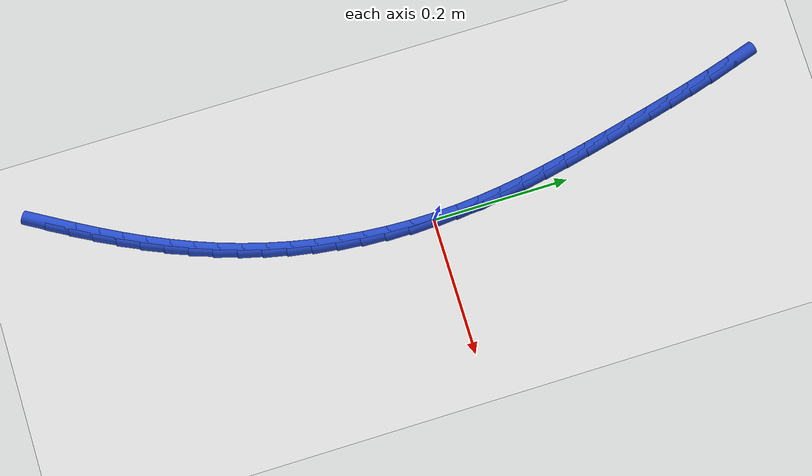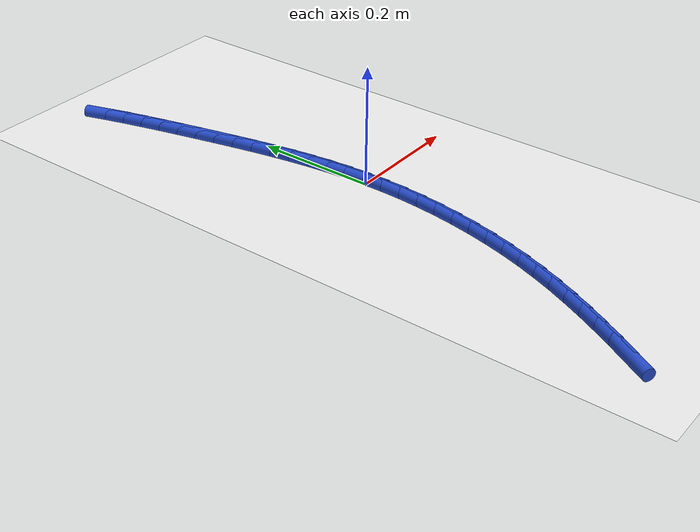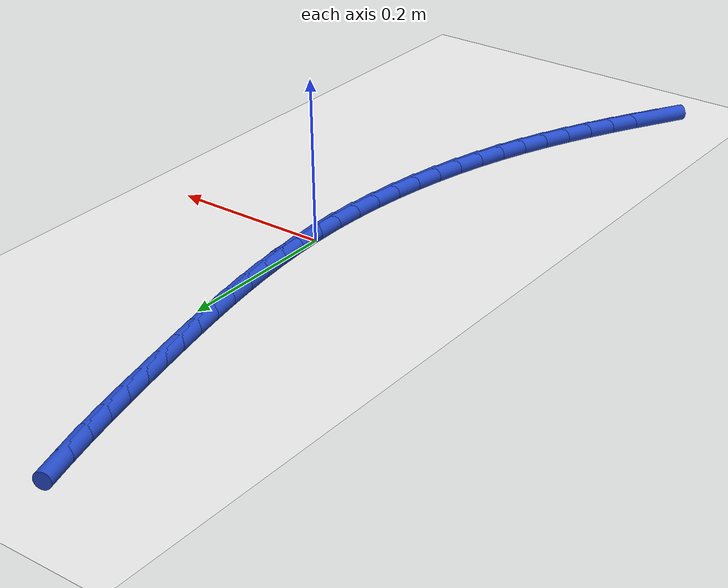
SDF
<sdf version="1.6">
 <world name="default">
  <model name="ground_plane">
   <static>1</static>
   <link name="link">
    <collision name="collision">
     <geometry><plane><normal>0 0 1</normal><size>100 100</size></plane></geometry>
     <surface><friction><ode><mu>100</mu><mu2>50</mu2></ode></friction></surface>
    </collision>
    <visual name="visual">
     <cast_shadows>0</cast_shadows>
     <geometry><plane><normal>0 0 1</normal><size>100 100</size></plane></geometry>
     <material>
      <script><uri>file://media/materials/scripts/gazebo.material</uri><name>Gazebo/WhiteGlow</name></script>
     </material>
    </visual>
   </link>
  </model>
  <model name="line">
   <link name="link_0">
    <pose>6.938893903907228e-18 -1.1796119636642288e-16 0.01 0 1.57 -1.5264489816676594</pose>
    <collision name="collision">
     <geometry><cylinder><radius>0.01</radius><length>0.08</length></cylinder></geometry>
    </collision>
    <visual name="visual">
     <material>
      <script><name>Gazebo/Blue</name><uri>file://media/materials/scripts/gazebo.material</uri></script>
     </material>
     <geometry><cylinder><radius>0.01</radius><length>0.08</length></cylinder></geometry>
    </visual>
   </link>
   <link name="link_1">
    <pose>-0.0015467610386075527 0.03485545533591956 0.01 0 1.57 -1.4882659478826439</pose>
    <collision name="collision">
     <geometry><cylinder><radius>0.01</radius><length>0.08</length></cylinder></geometry>
    </collision>
    <visual name="visual">
     <material>
      <script><name>Gazebo/Blue</name><uri>file://media/materials/scripts/gazebo.material</uri></script>
     </material>
     <geometry><cylinder><radius>0.01</radius><length>0.08</length></cylinder></geometry>
    </visual>
   </link>
   <link name="link_2">
    <pose>-0.0044185333484661775 0.06957296484486963 0.01 0 1.57 -1.4543281719729082</pose>
    <collision name="collision">
     <geometry><cylinder><radius>0.01</radius><length>0.08</length></cylinder></geometry>
    </collision>
    <visual name="visual">
     <material>
      <script><name>Gazebo/Blue</name><uri>file://media/materials/scripts/gazebo.material</uri></script>
     </material>
     <geometry><cylinder><radius>0.01</radius><length>0.08</length></cylinder></geometry>
    </visual>
   </link>
   <link name="link_3">
    <pose>-0.008464915684399684 0.1041581234297182 0.01 0 1.57 -1.424693767751485</pose>
    <collision name="collision">
     <geometry><cylinder><radius>0.01</radius><length>0.08</length></cylinder></geometry>
    </collision>
    <visual name="visual">
     <material>
      <script><name>Gazebo/Blue</name><uri>file://media/materials/scripts/gazebo.material</uri></script>
     </material>
     <geometry><cylinder><radius>0.01</radius><length>0.08</length></cylinder></geometry>
    </visual>
   </link>
   <link name="link_4">
    <pose>-0.013535506801231889 0.13861652599333338 0.01 0 1.57 -1.3993772028632878</pose>
    <collision name="collision">
     <geometry><cylinder><radius>0.01</radius><length>0.08</length></cylinder></geometry>
    </collision>
    <visual name="visual">
     <material>
      <script><name>Gazebo/Blue</name><uri>file://media/materials/scripts/gazebo.material</uri></script>
     </material>
     <geometry><cylinder><radius>0.01</radius><length>0.08</length></cylinder></geometry>
    </visual>
   </link>
   <link name="link_5">
    <pose>-0.019479905453786604 0.17295376743858337 0.01 0 1.57 -1.378365679883654</pose>
    <collision name="collision">
     <geometry><cylinder><radius>0.01</radius><length>0.08</length></cylinder></geometry>
    </collision>
    <visual name="visual">
     <material>
      <script><name>Gazebo/Blue</name><uri>file://media/materials/scripts/gazebo.material</uri></script>
     </material>
     <geometry><cylinder><radius>0.01</radius><length>0.08</length></cylinder></geometry>
    </visual>
   </link>
   <link name="link_6">
    <pose>-0.02614771039688766 0.20717544266833637 0.01 0 1.57 -1.361633290367969</pose>
    <collision name="collision">
     <geometry><cylinder><radius>0.01</radius><length>0.08</length></cylinder></geometry>
    </collision>
    <visual name="visual">
     <material>
      <script><name>Gazebo/Blue</name><uri>file://media/materials/scripts/gazebo.material</uri></script>
     </material>
     <geometry><cylinder><radius>0.01</radius><length>0.08</length></cylinder></geometry>
    </visual>
   </link>
   <link name="link_7">
    <pose>-0.033388520385358854 0.24128714658546044 0.01 0 1.57 -1.3491526212590932</pose>
    <collision name="collision">
     <geometry><cylinder><radius>0.01</radius><length>0.08</length></cylinder></geometry>
    </collision>
    <visual name="visual">
     <material>
      <script><name>Gazebo/Blue</name><uri>file://media/materials/scripts/gazebo.material</uri></script>
     </material>
     <geometry><cylinder><radius>0.01</radius><length>0.08</length></cylinder></geometry>
    </visual>
   </link>
   <link name="link_8">
    <pose>-0.041051934174024 0.2752944740928237 0.01 0 1.57 -1.3409038187022755</pose>
    <collision name="collision">
     <geometry><cylinder><radius>0.01</radius><length>0.08</length></cylinder></geometry>
    </collision>
    <visual name="visual">
     <material>
      <script><name>Gazebo/Blue</name><uri>file://media/materials/scripts/gazebo.material</uri></script>
     </material>
     <geometry><cylinder><radius>0.01</radius><length>0.08</length></cylinder></geometry>
    </visual>
   </link>
   <link name="link_9">
    <pose>-0.04898755052486072 0.30920302009256817 0.01 0 1.57 -1.3356244483135322</pose>
    <collision name="collision">
     <geometry><cylinder><radius>0.01</radius><length>0.08</length></cylinder></geometry>
    </collision>
    <visual name="visual">
     <material>
      <script><name>Gazebo/Blue</name><uri>file://media/materials/scripts/gazebo.material</uri></script>
     </material>
     <geometry><cylinder><radius>0.01</radius><length>0.08</length></cylinder></geometry>
    </visual>
   </link>
   <link name="link_10">
    <pose>-0.057088827889704534 0.3430139272416276 0.01 0 1.57 -1.3283681049365337</pose>
    <collision name="collision">
     <geometry><cylinder><radius>0.01</radius><length>0.08</length></cylinder></geometry>
    </collision>
    <visual name="visual">
     <material>
      <script><name>Gazebo/Blue</name><uri>file://media/materials/scripts/gazebo.material</uri></script>
     </material>
     <geometry><cylinder><radius>0.01</radius><length>0.08</length></cylinder></geometry>
    </visual>
   </link>
   <link name="link_11">
    <pose>-0.06542179582705984 0.3767108203146784 0.01 0 1.57 -1.3179092680957762</pose>
    <collision name="collision">
     <geometry><cylinder><radius>0.01</radius><length>0.08</length></cylinder></geometry>
    </collision>
    <visual name="visual">
     <material>
      <script><name>Gazebo/Blue</name><uri>file://media/materials/scripts/gazebo.material</uri></script>
     </material>
     <geometry><cylinder><radius>0.01</radius><length>0.08</length></cylinder></geometry>
    </visual>
   </link>
   <link name="link_12">
    <pose>-0.07409492143907431 0.41027301620481044 0.01 0 1.57 -1.3042433775185882</pose>
    <collision name="collision">
     <geometry><cylinder><radius>0.01</radius><length>0.08</length></cylinder></geometry>
    </collision>
    <visual name="visual">
     <material>
      <script><name>Gazebo/Blue</name><uri>file://media/materials/scripts/gazebo.material</uri></script>
     </material>
     <geometry><cylinder><radius>0.01</radius><length>0.08</length></cylinder></geometry>
    </visual>
   </link>
   <link name="link_13">
    <pose>-0.08321667182789558 0.44367983180511394 0.01 0 1.57 -1.287375561786151</pose>
    <collision name="collision">
     <geometry><cylinder><radius>0.01</radius><length>0.08</length></cylinder></geometry>
    </collision>
    <visual name="visual">
     <material>
      <script><name>Gazebo/Blue</name><uri>file://media/materials/scripts/gazebo.material</uri></script>
     </material>
     <geometry><cylinder><radius>0.01</radius><length>0.08</length></cylinder></geometry>
    </visual>
   </link>
   <link name="link_14">
    <pose>-0.09289551409567123 0.4769105840086785 0.01 0 1.57 -1.2673248457521828</pose>
    <collision name="collision">
     <geometry><cylinder><radius>0.01</radius><length>0.08</length></cylinder></geometry>
    </collision>
    <visual name="visual">
     <material>
      <script><name>Gazebo/Blue</name><uri>file://media/materials/scripts/gazebo.material</uri></script>
     </material>
     <geometry><cylinder><radius>0.01</radius><length>0.08</length></cylinder></geometry>
    </visual>
   </link>
   <link name="link_184">
    <pose>-0.1540568127403309 -0.5268646328590214 0.01 0 1.57 1.0462151289923936</pose>
    <collision name="collision">
     <geometry><cylinder><radius>0.01</radius><length>0.08</length></cylinder></geometry>
    </collision>
    <visual name="visual">
     <material>
      <script><name>Gazebo/Blue</name><uri>file://media/materials/scripts/gazebo.material</uri></script>
     </material>
     <geometry><cylinder><radius>0.01</radius><length>0.08</length></cylinder></geometry>
    </visual>
   </link>
   <link name="link_185">
    <pose>-0.1364260822127284 -0.4963964774249297 0.01 0 1.57 1.064957142361367</pose>
    <collision name="collision">
     <geometry><cylinder><radius>0.01</radius><length>0.08</length></cylinder></geometry>
    </collision>
    <visual name="visual">
     <material>
      <script><name>Gazebo/Blue</name><uri>file://media/materials/scripts/gazebo.material</uri></script>
     </material>
     <geometry><cylinder><radius>0.01</radius><length>0.08</length></cylinder></geometry>
    </visual>
   </link>
   <link name="link_186">
    <pose>-0.11953117331551723 -0.4658952257632016 0.01 0 1.57 1.087607587859521</pose>
    <collision name="collision">
     <geometry><cylinder><radius>0.01</radius><length>0.08</length></cylinder></geometry>
    </collision>
    <visual name="visual">
     <material>
      <script><name>Gazebo/Blue</name><uri>file://media/materials/scripts/gazebo.material</uri></script>
     </material>
     <geometry><cylinder><radius>0.01</radius><length>0.08</length></cylinder></geometry>
    </visual>
   </link>
   <link name="link_187">
    <pose>-0.1034552844453795 -0.435255260574384 0.01 0 1.57 1.1141272805325437</pose>
    <collision name="collision">
     <geometry><cylinder><radius>0.01</radius><length>0.08</length></cylinder></geometry>
    </collision>
    <visual name="visual">
     <material>
      <script><name>Gazebo/Blue</name><uri>file://media/materials/scripts/gazebo.material</uri></script>
     </material>
     <geometry><cylinder><radius>0.01</radius><length>0.08</length></cylinder></geometry>
    </visual>
   </link>
   <link name="link_188">
    <pose>-0.08828161399899742 -0.4043709645590246 0.01 0 1.57 1.1444111170685975</pose>
    <collision name="collision">
     <geometry><cylinder><radius>0.01</radius><length>0.08</length></cylinder></geometry>
    </collision>
    <visual name="visual">
     <material>
      <script><name>Gazebo/Blue</name><uri>file://media/materials/scripts/gazebo.material</uri></script>
     </material>
     <geometry><cylinder><radius>0.01</radius><length>0.08</length></cylinder></geometry>
    </visual>
   </link>
   <link name="link_189">
    <pose>-0.07409336037305304 -0.37313672041767015 0.01 0 1.57 1.1782780035562979</pose>
    <collision name="collision">
     <geometry><cylinder><radius>0.01</radius><length>0.08</length></cylinder></geometry>
    </collision>
    <visual name="visual">
     <material>
      <script><name>Gazebo/Blue</name><uri>file://media/materials/scripts/gazebo.material</uri></script>
     </material>
     <geometry><cylinder><radius>0.01</radius><length>0.08</length></cylinder></geometry>
    </visual>
   </link>
   <link name="link_190">
    <pose>-0.060973721964228476 -0.34144691085086804 0.01 0 1.57 1.2154633404355106</pose>
    <collision name="collision">
     <geometry><cylinder><radius>0.01</radius><length>0.08</length></cylinder></geometry>
    </collision>
    <visual name="visual">
     <material>
      <script><name>Gazebo/Blue</name><uri>file://media/materials/scripts/gazebo.material</uri></script>
     </material>
     <geometry><cylinder><radius>0.01</radius><length>0.08</length></cylinder></geometry>
    </visual>
   </link>
   <link name="link_191">
    <pose>-0.049005897169205906 -0.3091959185591655 0.01 0 1.57 1.2550737342510223</pose>
    <collision name="collision">
     <geometry><cylinder><radius>0.01</radius><length>0.08</length></cylinder></geometry>
    </collision>
    <visual name="visual">
     <material>
      <script><name>Gazebo/Blue</name><uri>file://media/materials/scripts/gazebo.material</uri></script>
     </material>
     <geometry><cylinder><radius>0.01</radius><length>0.08</length></cylinder></geometry>
    </visual>
   </link>
   <link name="link_192">
    <pose>-0.03826381850314762 -0.27631022053347604 0.01 0 1.57 1.2947331056233067</pose>
    <collision name="collision">
     <geometry><cylinder><radius>0.01</radius><length>0.08</length></cylinder></geometry>
    </collision>
    <visual name="visual">
     <material>
      <script><name>Gazebo/Blue</name><uri>file://media/materials/scripts/gazebo.material</uri></script>
     </material>
     <geometry><cylinder><radius>0.01</radius><length>0.08</length></cylinder></geometry>
    </visual>
   </link>
   <link name="link_193">
    <pose>-0.028783739028285148 -0.2428468043157634 0.01 0 1.57 1.3340494303375896</pose>
    <collision name="collision">
     <geometry><cylinder><radius>0.01</radius><length>0.08</length></cylinder></geometry>
    </collision>
    <visual name="visual">
     <material>
      <script><name>Gazebo/Blue</name><uri>file://media/materials/scripts/gazebo.material</uri></script>
     </material>
     <geometry><cylinder><radius>0.01</radius><length>0.08</length></cylinder></geometry>
    </visual>
   </link>
   <link name="link_194">
    <pose>-0.020592335411639396 -0.20889582726652697 0.01 0 1.57 1.3732223137212065</pose>
    <collision name="collision">
     <geometry><cylinder><radius>0.01</radius><length>0.08</length></cylinder></geometry>
    </collision>
    <visual name="visual">
     <material>
      <script><name>Gazebo/Blue</name><uri>file://media/materials/scripts/gazebo.material</uri></script>
     </material>
     <geometry><cylinder><radius>0.01</radius><length>0.08</length></cylinder></geometry>
    </visual>
   </link>
   <link name="link_195">
    <pose>-0.01371628431866899 -0.17454744675167544 0.01 0 1.57 1.4124471430162826</pose>
    <collision name="collision">
     <geometry><cylinder><radius>0.01</radius><length>0.08</length></cylinder></geometry>
    </collision>
    <visual name="visual">
     <material>
      <script><name>Gazebo/Blue</name><uri>file://media/materials/scripts/gazebo.material</uri></script>
     </material>
     <geometry><cylinder><radius>0.01</radius><length>0.08</length></cylinder></geometry>
    </visual>
   </link>
   <link name="link_196">
    <pose>-0.008182262414832586 -0.13989182013711765 0.01 0 1.57 1.4519161253896866</pose>
    <collision name="collision">
     <geometry><cylinder><radius>0.01</radius><length>0.08</length></cylinder></geometry>
    </collision>
    <visual name="visual">
     <material>
      <script><name>Gazebo/Blue</name><uri>file://media/materials/scripts/gazebo.material</uri></script>
     </material>
     <geometry><cylinder><radius>0.01</radius><length>0.08</length></cylinder></geometry>
    </visual>
   </link>
   <link name="link_197">
    <pose>-0.004016946365588838 -0.10501910478876247 0.01 0 1.57 1.4918191844133204</pose>
    <collision name="collision">
     <geometry><cylinder><radius>0.01</radius><length>0.08</length></cylinder></geometry>
    </collision>
    <visual name="visual">
     <material>
      <script><name>Gazebo/Blue</name><uri>file://media/materials/scripts/gazebo.material</uri></script>
     </material>
     <geometry><cylinder><radius>0.01</radius><length>0.08</length></cylinder></geometry>
    </visual>
   </link>
   <link name="link_198">
    <pose>-0.0012470128363963927 -0.07001945807251865 0.01 0 1.57 1.532344625445438</pose>
    <collision name="collision">
     <geometry><cylinder><radius>0.01</radius><length>0.08</length></cylinder></geometry>
    </collision>
    <visual name="visual">
     <material>
      <script><name>Gazebo/Blue</name><uri>file://media/materials/scripts/gazebo.material</uri></script>
     </material>
     <geometry><cylinder><radius>0.01</radius><length>0.08</length></cylinder></geometry>
    </visual>
   </link>
   <link name="link_199">
    <pose>0.00010086150728610271 -0.03498303735429498 0.01 0 1.57 -1.5679131801203277</pose>
    <collision name="collision">
     <geometry><cylinder><radius>0.01</radius><length>0.08</length></cylinder></geometry>
    </collision>
    <visual name="visual">
     <material>
      <script><name>Gazebo/Blue</name><uri>file://media/materials/scripts/gazebo.material</uri></script>
     </material>
     <geometry><cylinder><radius>0.01</radius><length>0.08</length></cylinder></geometry>
    </visual>
   </link>
   <link name="link_200">
    <pose>-6.938893903907228e-18 -2.8449465006019636e-16 0.01 0 1.57 -1.525583279922698</pose>
    <collision name="collision">
     <geometry><cylinder><radius>0.01</radius><length>0.08</length></cylinder></geometry>
    </collision>
    <visual name="visual">
     <material>
      <script><name>Gazebo/Blue</name><uri>file://media/materials/scripts/gazebo.material</uri></script>
     </material>
     <geometry><cylinder><radius>0.01</radius><length>0.08</length></cylinder></geometry>
    </visual>
   </link>
   <link name="link_201">
    <pose>-0.0015762740237134209 0.034839496624457386 0.01 0 1.57 -1.5255832799226974</pose>
    <collision name="collision">
     <geometry><cylinder><radius>0.01</radius><length>0.08</length></cylinder></geometry>
    </collision>
    <visual name="visual">
     <material>
      <script><name>Gazebo/Blue</name><uri>file://media/materials/scripts/gazebo.material</uri></script>
     </material>
     <geometry><cylinder><radius>0.01</radius><length>0.08</length></cylinder></geometry>
    </visual>
   </link>
  </model>
 </world>
</sdf>
